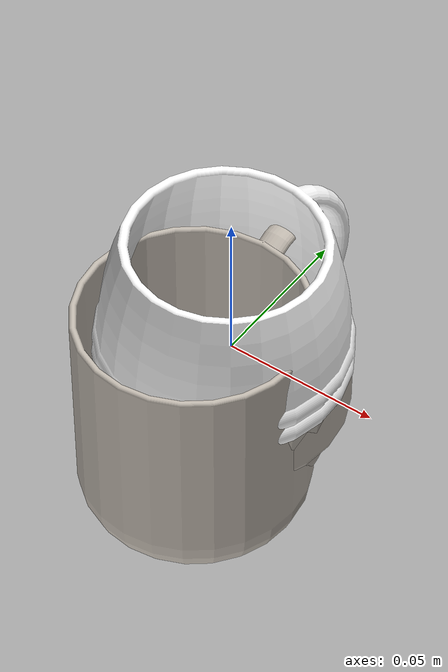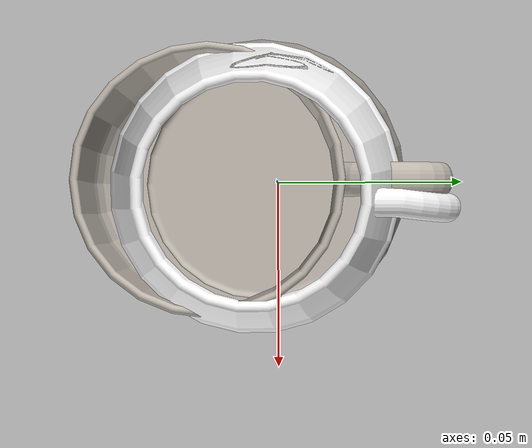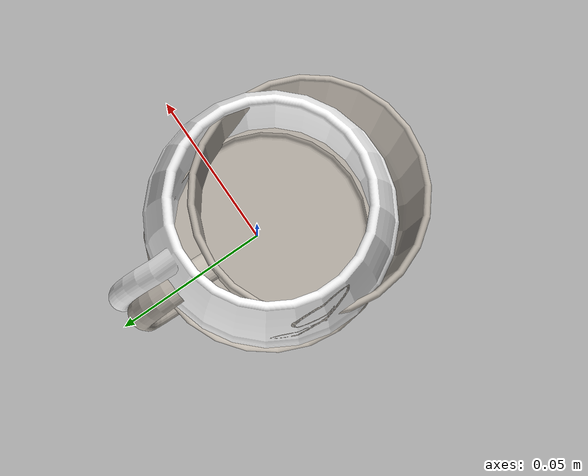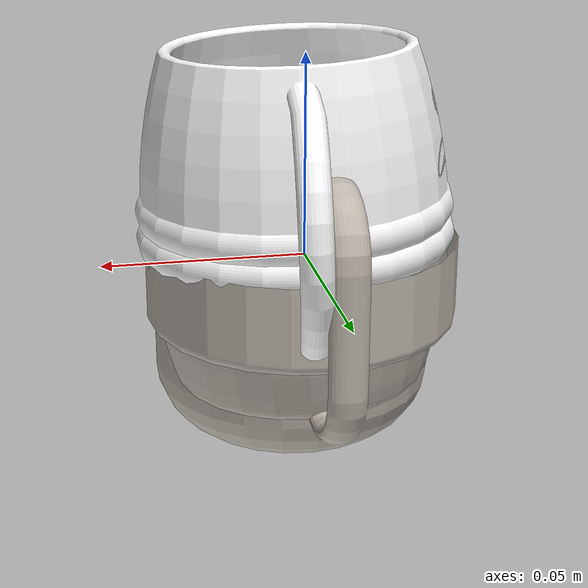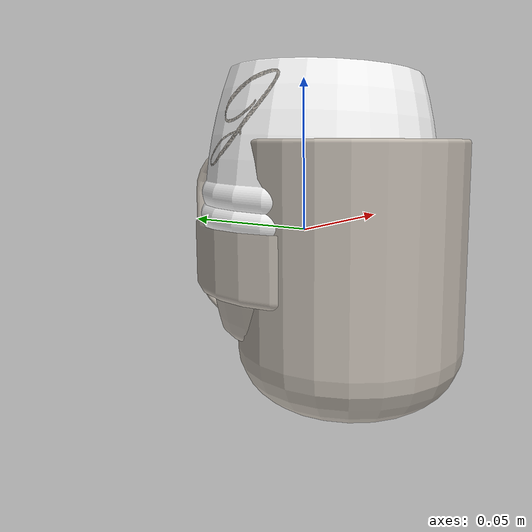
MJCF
<mujoco model="345d3e72">
  <asset>
  <texture file="../../../textures/ceramic.png" name="tex-345d3e72" type="2d" />
  <material name="345d3e72" reflectance="0.5" texrepeat="1 1" texture="tex-345d3e72" texuniform="false" />
  <mesh file="visual/model_normalized_0.obj" name="model_normalized_0_vis" scale="0.15 0.15 0.15" /><mesh file="visual/model_normalized_1.obj" name="model_normalized_1_vis" scale="0.15 0.15 0.15" /><mesh file="visual/model_normalized_2.obj" name="model_normalized_2_vis" scale="0.15 0.15 0.15" /><mesh file="visual/model_normalized_3.obj" name="model_normalized_3_vis" scale="0.15 0.15 0.15" /><mesh file="visual/model_normalized_4.obj" name="model_normalized_4_vis" scale="0.15 0.15 0.15" /><mesh file="collision/model_normalized_collision_13.obj" name="model_normalized_collision_13._coll" scale="0.15 0.15 0.15" /><mesh file="collision/model_normalized_collision_16.obj" name="model_normalized_collision_16._coll" scale="0.15 0.15 0.15" /><mesh file="collision/model_normalized_collision_30.obj" name="model_normalized_collision_30._coll" scale="0.15 0.15 0.15" /><mesh file="collision/model_normalized_collision_21.obj" name="model_normalized_collision_21._coll" scale="0.15 0.15 0.15" /><mesh file="collision/model_normalized_collision_1.obj" name="model_normalized_collision_1._coll" scale="0.15 0.15 0.15" /><mesh file="collision/model_normalized_collision_20.obj" name="model_normalized_collision_20._coll" scale="0.15 0.15 0.15" /><mesh file="collision/model_normalized_collision_27.obj" name="model_normalized_collision_27._coll" scale="0.15 0.15 0.15" /><mesh file="collision/model_normalized_collision_10.obj" name="model_normalized_collision_10._coll" scale="0.15 0.15 0.15" /><mesh file="collision/model_normalized_collision_24.obj" name="model_normalized_collision_24._coll" scale="0.15 0.15 0.15" /><mesh file="collision/model_normalized_collision_28.obj" name="model_normalized_collision_28._coll" scale="0.15 0.15 0.15" /><mesh file="collision/model_normalized_collision_25.obj" name="model_normalized_collision_25._coll" scale="0.15 0.15 0.15" /><mesh file="collision/model_normalized_collision_23.obj" name="model_normalized_collision_23._coll" scale="0.15 0.15 0.15" /><mesh file="collision/model_normalized_collision_6.obj" name="model_normalized_collision_6._coll" scale="0.15 0.15 0.15" /><mesh file="collision/model_normalized_collision_8.obj" name="model_normalized_collision_8._coll" scale="0.15 0.15 0.15" /><mesh file="collision/model_normalized_collision_2.obj" name="model_normalized_collision_2._coll" scale="0.15 0.15 0.15" /><mesh file="collision/model_normalized_collision_12.obj" name="model_normalized_collision_12._coll" scale="0.15 0.15 0.15" /><mesh file="collision/model_normalized_collision_4.obj" name="model_normalized_collision_4._coll" scale="0.15 0.15 0.15" /><mesh file="collision/model_normalized_collision_19.obj" name="model_normalized_collision_19._coll" scale="0.15 0.15 0.15" /><mesh file="collision/model_normalized_collision_5.obj" name="model_normalized_collision_5._coll" scale="0.15 0.15 0.15" /><mesh file="collision/model_normalized_collision_14.obj" name="model_normalized_collision_14._coll" scale="0.15 0.15 0.15" /><mesh file="collision/model_normalized_collision_11.obj" name="model_normalized_collision_11._coll" scale="0.15 0.15 0.15" /><mesh file="collision/model_normalized_collision_15.obj" name="model_normalized_collision_15._coll" scale="0.15 0.15 0.15" /><mesh file="collision/model_normalized_collision_18.obj" name="model_normalized_collision_18._coll" scale="0.15 0.15 0.15" /><mesh file="collision/model_normalized_collision_29.obj" name="model_normalized_collision_29._coll" scale="0.15 0.15 0.15" /><mesh file="collision/model_normalized_collision_26.obj" name="model_normalized_collision_26._coll" scale="0.15 0.15 0.15" /><mesh file="collision/model_normalized_collision_17.obj" name="model_normalized_collision_17._coll" scale="0.15 0.15 0.15" /><mesh file="collision/model_normalized_collision_31.obj" name="model_normalized_collision_31._coll" scale="0.15 0.15 0.15" /><mesh file="collision/model_normalized_collision_3.obj" name="model_normalized_collision_3._coll" scale="0.15 0.15 0.15" /><mesh file="collision/model_normalized_collision_9.obj" name="model_normalized_collision_9._coll" scale="0.15 0.15 0.15" /><mesh file="collision/model_normalized_collision_22.obj" name="model_normalized_collision_22._coll" scale="0.15 0.15 0.15" /><mesh file="collision/model_normalized_collision_7.obj" name="model_normalized_collision_7._coll" scale="0.15 0.15 0.15" /><mesh file="collision/model_normalized_collision_0.obj" name="model_normalized_collision_0._coll" scale="0.15 0.15 0.15" /><texture type="2d" name="texture0" file="visual/texture0.png" /><texture type="2d" name="texture1" file="visual/texture1.png" /><texture type="2d" name="texture2" file="visual/texture2.png" /><texture type="2d" name="texture3" file="visual/texture3.png" /><material name="material_0_0" specular="0.4000000000000001" shininess="0.01" rgba="0 0 0 1.0" /><material name="material_0_24" specular="0.4000000000000001" shininess="0.01" rgba="1 1 1 1.0" /><material name="material_1_1_8" texture="texture0" specular="0.4000000000000001" shininess="0.01" /><material name="material_2_2_8" texture="texture1" specular="0.4000000000000001" shininess="0.01" /><material name="material_3_3_8" texture="texture2" specular="0.4000000000000001" shininess="0.01" /><material name="material_4_4_8" texture="texture3" specular="0.4000000000000001" shininess="0.01" /></asset>
  <worldbody>
    <body>
      <body name="object">
      <geom solimp="0.998 0.998 0.001" solref="0.001 1" density="100" friction="0.95 0.3 0.1" type="mesh" mesh="model_normalized_0_vis" conaffinity="0" contype="0" group="1" material="material_2_2_8" /><geom solimp="0.998 0.998 0.001" solref="0.001 1" density="100" friction="0.95 0.3 0.1" type="mesh" mesh="model_normalized_1_vis" conaffinity="0" contype="0" group="1" material="material_4_4_8" /><geom solimp="0.998 0.998 0.001" solref="0.001 1" density="100" friction="0.95 0.3 0.1" type="mesh" mesh="model_normalized_2_vis" conaffinity="0" contype="0" group="1" material="material_3_3_8" /><geom solimp="0.998 0.998 0.001" solref="0.001 1" density="100" friction="0.95 0.3 0.1" type="mesh" mesh="model_normalized_3_vis" conaffinity="0" contype="0" group="1" material="material_1_1_8" /><geom solimp="0.998 0.998 0.001" solref="0.001 1" density="100" friction="0.95 0.3 0.1" type="mesh" mesh="model_normalized_4_vis" conaffinity="0" contype="0" group="1" material="material_0_24" /><geom solimp="0.998 0.998 0.001" solref="0.001 1" density="100" friction="0.95 0.3 0.1" type="mesh" mesh="model_normalized_collision_13._coll" group="0" rgba="0.8 0.8 0.8 0.0" /><geom solimp="0.998 0.998 0.001" solref="0.001 1" density="100" friction="0.95 0.3 0.1" type="mesh" mesh="model_normalized_collision_16._coll" group="0" rgba="0.8 0.8 0.8 0.0" /><geom solimp="0.998 0.998 0.001" solref="0.001 1" density="100" friction="0.95 0.3 0.1" type="mesh" mesh="model_normalized_collision_30._coll" group="0" rgba="0.8 0.8 0.8 0.0" /><geom solimp="0.998 0.998 0.001" solref="0.001 1" density="100" friction="0.95 0.3 0.1" type="mesh" mesh="model_normalized_collision_21._coll" group="0" rgba="0.8 0.8 0.8 0.0" /><geom solimp="0.998 0.998 0.001" solref="0.001 1" density="100" friction="0.95 0.3 0.1" type="mesh" mesh="model_normalized_collision_1._coll" group="0" rgba="0.8 0.8 0.8 0.0" /><geom solimp="0.998 0.998 0.001" solref="0.001 1" density="100" friction="0.95 0.3 0.1" type="mesh" mesh="model_normalized_collision_20._coll" group="0" rgba="0.8 0.8 0.8 0.0" /><geom solimp="0.998 0.998 0.001" solref="0.001 1" density="100" friction="0.95 0.3 0.1" type="mesh" mesh="model_normalized_collision_27._coll" group="0" rgba="0.8 0.8 0.8 0.0" /><geom solimp="0.998 0.998 0.001" solref="0.001 1" density="100" friction="0.95 0.3 0.1" type="mesh" mesh="model_normalized_collision_10._coll" group="0" rgba="0.8 0.8 0.8 0.0" /><geom solimp="0.998 0.998 0.001" solref="0.001 1" density="100" friction="0.95 0.3 0.1" type="mesh" mesh="model_normalized_collision_24._coll" group="0" rgba="0.8 0.8 0.8 0.0" /><geom solimp="0.998 0.998 0.001" solref="0.001 1" density="100" friction="0.95 0.3 0.1" type="mesh" mesh="model_normalized_collision_28._coll" group="0" rgba="0.8 0.8 0.8 0.0" /><geom solimp="0.998 0.998 0.001" solref="0.001 1" density="100" friction="0.95 0.3 0.1" type="mesh" mesh="model_normalized_collision_25._coll" group="0" rgba="0.8 0.8 0.8 0.0" /><geom solimp="0.998 0.998 0.001" solref="0.001 1" density="100" friction="0.95 0.3 0.1" type="mesh" mesh="model_normalized_collision_23._coll" group="0" rgba="0.8 0.8 0.8 0.0" /><geom solimp="0.998 0.998 0.001" solref="0.001 1" density="100" friction="0.95 0.3 0.1" type="mesh" mesh="model_normalized_collision_6._coll" group="0" rgba="0.8 0.8 0.8 0.0" /><geom solimp="0.998 0.998 0.001" solref="0.001 1" density="100" friction="0.95 0.3 0.1" type="mesh" mesh="model_normalized_collision_8._coll" group="0" rgba="0.8 0.8 0.8 0.0" /><geom solimp="0.998 0.998 0.001" solref="0.001 1" density="100" friction="0.95 0.3 0.1" type="mesh" mesh="model_normalized_collision_2._coll" group="0" rgba="0.8 0.8 0.8 0.0" /><geom solimp="0.998 0.998 0.001" solref="0.001 1" density="100" friction="0.95 0.3 0.1" type="mesh" mesh="model_normalized_collision_12._coll" group="0" rgba="0.8 0.8 0.8 0.0" /><geom solimp="0.998 0.998 0.001" solref="0.001 1" density="100" friction="0.95 0.3 0.1" type="mesh" mesh="model_normalized_collision_4._coll" group="0" rgba="0.8 0.8 0.8 0.0" /><geom solimp="0.998 0.998 0.001" solref="0.001 1" density="100" friction="0.95 0.3 0.1" type="mesh" mesh="model_normalized_collision_19._coll" group="0" rgba="0.8 0.8 0.8 0.0" /><geom solimp="0.998 0.998 0.001" solref="0.001 1" density="100" friction="0.95 0.3 0.1" type="mesh" mesh="model_normalized_collision_5._coll" group="0" rgba="0.8 0.8 0.8 0.0" /><geom solimp="0.998 0.998 0.001" solref="0.001 1" density="100" friction="0.95 0.3 0.1" type="mesh" mesh="model_normalized_collision_14._coll" group="0" rgba="0.8 0.8 0.8 0.0" /><geom solimp="0.998 0.998 0.001" solref="0.001 1" density="100" friction="0.95 0.3 0.1" type="mesh" mesh="model_normalized_collision_11._coll" group="0" rgba="0.8 0.8 0.8 0.0" /><geom solimp="0.998 0.998 0.001" solref="0.001 1" density="100" friction="0.95 0.3 0.1" type="mesh" mesh="model_normalized_collision_15._coll" group="0" rgba="0.8 0.8 0.8 0.0" /><geom solimp="0.998 0.998 0.001" solref="0.001 1" density="100" friction="0.95 0.3 0.1" type="mesh" mesh="model_normalized_collision_18._coll" group="0" rgba="0.8 0.8 0.8 0.0" /><geom solimp="0.998 0.998 0.001" solref="0.001 1" density="100" friction="0.95 0.3 0.1" type="mesh" mesh="model_normalized_collision_29._coll" group="0" rgba="0.8 0.8 0.8 0.0" /><geom solimp="0.998 0.998 0.001" solref="0.001 1" density="100" friction="0.95 0.3 0.1" type="mesh" mesh="model_normalized_collision_26._coll" group="0" rgba="0.8 0.8 0.8 0.0" /><geom solimp="0.998 0.998 0.001" solref="0.001 1" density="100" friction="0.95 0.3 0.1" type="mesh" mesh="model_normalized_collision_17._coll" group="0" rgba="0.8 0.8 0.8 0.0" /><geom solimp="0.998 0.998 0.001" solref="0.001 1" density="100" friction="0.95 0.3 0.1" type="mesh" mesh="model_normalized_collision_31._coll" group="0" rgba="0.8 0.8 0.8 0.0" /><geom solimp="0.998 0.998 0.001" solref="0.001 1" density="100" friction="0.95 0.3 0.1" type="mesh" mesh="model_normalized_collision_3._coll" group="0" rgba="0.8 0.8 0.8 0.0" /><geom solimp="0.998 0.998 0.001" solref="0.001 1" density="100" friction="0.95 0.3 0.1" type="mesh" mesh="model_normalized_collision_9._coll" group="0" rgba="0.8 0.8 0.8 0.0" /><geom solimp="0.998 0.998 0.001" solref="0.001 1" density="100" friction="0.95 0.3 0.1" type="mesh" mesh="model_normalized_collision_22._coll" group="0" rgba="0.8 0.8 0.8 0.0" /><geom solimp="0.998 0.998 0.001" solref="0.001 1" density="100" friction="0.95 0.3 0.1" type="mesh" mesh="model_normalized_collision_7._coll" group="0" rgba="0.8 0.8 0.8 0.0" /><geom solimp="0.998 0.998 0.001" solref="0.001 1" density="100" friction="0.95 0.3 0.1" type="mesh" mesh="model_normalized_collision_0._coll" group="0" rgba="0.8 0.8 0.8 0.0" /></body>
      <site rgba="0 0 0 0" size="0.005" pos="0.0013330501500000008 0.0016772146499999987 -0.03469475999999999" name="bottom_site" />
      <site rgba="0 0 0 0" size="0.005" pos="0.0013330501500000008 0.0016772146499999987 0.0519825846" name="top_site" />
      <site rgba="0 0 0 0" size="0.005" pos="0.0396164829 0.04794544530000001 0.0086439123" name="horizontal_radius_site" />
    </body>
  </worldbody>
</mujoco>
